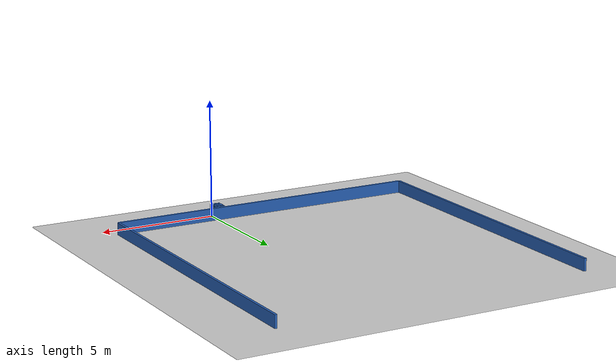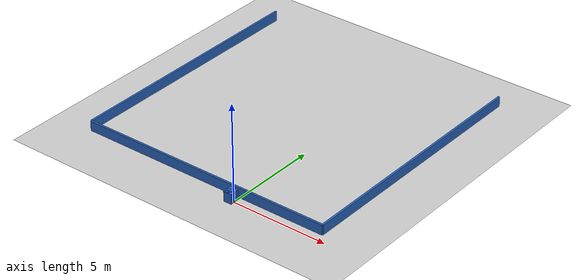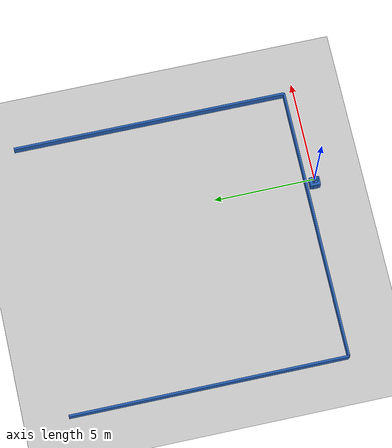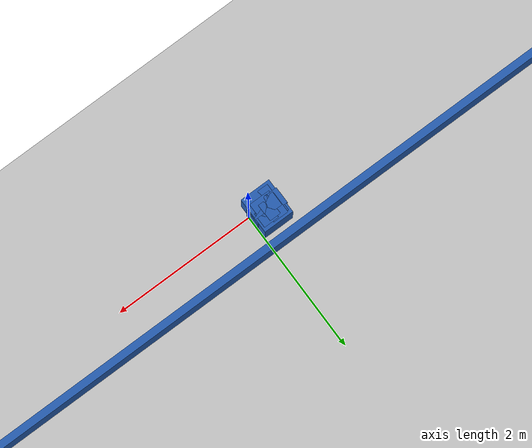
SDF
<?xml version="1.0" ?>
    <sdf version="1.5">
      <world name="default">
        <!-- A global light source -->
        <include>
          <uri>model://sun</uri>
        </include>
        <!-- A ground plane -->
        <include>
          <uri>model://ground_plane</uri>
        </include>

    <model name='libopen_space_final_T2B_57_10'>
      <static>1</static>
      <pose frame=''>-0.225000 0.075000 0.000000 0.000000 0.000000 0.000000</pose>
      <link name='link'>
        <inertial>
          <mass>1</mass>
          <inertia>
            <ixx>0.145833</ixx>
            <ixy>0</ixy>
            <ixz>0</ixz>
            <iyy>0.145833</iyy>
            <iyz>0</iyz>
            <izz>0.125</izz>
          </inertia>
        </inertial>
        <collision name='collision'>
          <geometry>
            <box>
              <size>0.32 0.20 1</size>
            </box>
          </geometry>
          <max_contacts>10</max_contacts>
          <surface>
            <contact>
              <ode/>
            </contact>
            <bounce/>
            <friction>
              <torsional>
                <ode/>
              </torsional>
              <ode/>
            </friction>
          </surface>
        </collision>
        <visual name='visual'>
          <geometry>
            <box>
              <size>0.32 0.20 1</size>
            </box>
          </geometry>
	    <material>
              <ambient>0.152000 0.379000 0.720000 1</ambient>
	      <diffuse>0.152000 0.379000 0.720000 1</diffuse>
          </material>
          <material>
            <script>
              <name>Gazebo/Grey</name>
              <uri>file://media/materials/scripts/gazebo.material</uri>
            </script>
          </material>
        </visual>
        <self_collide>0</self_collide>
        <kinematic>0</kinematic>
        <gravity>1</gravity>
      </link>
      <plugin name='libopen_space_final_T2B_57_10' filename='libopen_space_final_T2B_57_10.so'/>
    </model>

    <model name='libopen_space_final_T2B_125_48'>
      <static>1</static>
      <pose frame=''>-0.225000 0.075000 0.000000 0.000000 0.000000 0.000000</pose>
      <link name='link'>
        <inertial>
          <mass>1</mass>
          <inertia>
            <ixx>0.145833</ixx>
            <ixy>0</ixy>
            <ixz>0</ixz>
            <iyy>0.145833</iyy>
            <iyz>0</iyz>
            <izz>0.125</izz>
          </inertia>
        </inertial>
        <collision name='collision'>
          <geometry>
            <box>
              <size>0.46 0.23 1</size>
            </box>
          </geometry>
          <max_contacts>10</max_contacts>
          <surface>
            <contact>
              <ode/>
            </contact>
            <bounce/>
            <friction>
              <torsional>
                <ode/>
              </torsional>
              <ode/>
            </friction>
          </surface>
        </collision>
        <visual name='visual'>
          <geometry>
            <box>
              <size>0.46 0.23 1</size>
            </box>
          </geometry>
	    <material>
              <ambient>0.152000 0.379000 0.720000 1</ambient>
	      <diffuse>0.152000 0.379000 0.720000 1</diffuse>
          </material>
          <material>
            <script>
              <name>Gazebo/Grey</name>
              <uri>file://media/materials/scripts/gazebo.material</uri>
            </script>
          </material>
        </visual>
        <self_collide>0</self_collide>
        <kinematic>0</kinematic>
        <gravity>1</gravity>
      </link>
      <plugin name='libopen_space_final_T2B_125_48' filename='libopen_space_final_T2B_125_48.so'/>
    </model>

    <model name='libopen_space_final_T2B_125_67'>
      <static>1</static>
      <pose frame=''>-0.225000 0.075000 0.000000 0.000000 0.000000 0.000000</pose>
      <link name='link'>
        <inertial>
          <mass>1</mass>
          <inertia>
            <ixx>0.145833</ixx>
            <ixy>0</ixy>
            <ixz>0</ixz>
            <iyy>0.145833</iyy>
            <iyz>0</iyz>
            <izz>0.125</izz>
          </inertia>
        </inertial>
        <collision name='collision'>
          <geometry>
            <box>
              <size>0.17 0.24 1</size>
            </box>
          </geometry>
          <max_contacts>10</max_contacts>
          <surface>
            <contact>
              <ode/>
            </contact>
            <bounce/>
            <friction>
              <torsional>
                <ode/>
              </torsional>
              <ode/>
            </friction>
          </surface>
        </collision>
        <visual name='visual'>
          <geometry>
            <box>
              <size>0.17 0.24 1</size>
            </box>
          </geometry>
	    <material>
              <ambient>0.152000 0.379000 0.720000 1</ambient>
	      <diffuse>0.152000 0.379000 0.720000 1</diffuse>
          </material>
          <material>
            <script>
              <name>Gazebo/Grey</name>
              <uri>file://media/materials/scripts/gazebo.material</uri>
            </script>
          </material>
        </visual>
        <self_collide>0</self_collide>
        <kinematic>0</kinematic>
        <gravity>1</gravity>
      </link>
      <plugin name='libopen_space_final_T2B_125_67' filename='libopen_space_final_T2B_125_67.so'/>
    </model>

    <model name='libopen_space_final_T2B_127_53'>
      <static>1</static>
      <pose frame=''>-0.225000 0.075000 0.000000 0.000000 0.000000 0.000000</pose>
      <link name='link'>
        <inertial>
          <mass>1</mass>
          <inertia>
            <ixx>0.145833</ixx>
            <ixy>0</ixy>
            <ixz>0</ixz>
            <iyy>0.145833</iyy>
            <iyz>0</iyz>
            <izz>0.125</izz>
          </inertia>
        </inertial>
        <collision name='collision'>
          <geometry>
            <box>
              <size>0.16 0.35 1</size>
            </box>
          </geometry>
          <max_contacts>10</max_contacts>
          <surface>
            <contact>
              <ode/>
            </contact>
            <bounce/>
            <friction>
              <torsional>
                <ode/>
              </torsional>
              <ode/>
            </friction>
          </surface>
        </collision>
        <visual name='visual'>
          <geometry>
            <box>
              <size>0.16 0.35 1</size>
            </box>
          </geometry>
	    <material>
              <ambient>0.152000 0.379000 0.720000 1</ambient>
	      <diffuse>0.152000 0.379000 0.720000 1</diffuse>
          </material>
          <material>
            <script>
              <name>Gazebo/Grey</name>
              <uri>file://media/materials/scripts/gazebo.material</uri>
            </script>
          </material>
        </visual>
        <self_collide>0</self_collide>
        <kinematic>0</kinematic>
        <gravity>1</gravity>
      </link>
      <plugin name='libopen_space_final_T2B_127_53' filename='libopen_space_final_T2B_127_53.so'/>
    </model>

    <model name='libopen_space_final_T2B_105_94'>
      <static>1</static>
      <pose frame=''>-0.225000 0.075000 0.000000 0.000000 0.000000 0.000000</pose>
      <link name='link'>
        <inertial>
          <mass>1</mass>
          <inertia>
            <ixx>0.145833</ixx>
            <ixy>0</ixy>
            <ixz>0</ixz>
            <iyy>0.145833</iyy>
            <iyz>0</iyz>
            <izz>0.125</izz>
          </inertia>
        </inertial>
        <collision name='collision'>
          <geometry>
            <box>
              <size>0.18 0.22 1</size>
            </box>
          </geometry>
          <max_contacts>10</max_contacts>
          <surface>
            <contact>
              <ode/>
            </contact>
            <bounce/>
            <friction>
              <torsional>
                <ode/>
              </torsional>
              <ode/>
            </friction>
          </surface>
        </collision>
        <visual name='visual'>
          <geometry>
            <box>
              <size>0.18 0.22 1</size>
            </box>
          </geometry>
	    <material>
              <ambient>0.152000 0.379000 0.720000 1</ambient>
	      <diffuse>0.152000 0.379000 0.720000 1</diffuse>
          </material>
          <material>
            <script>
              <name>Gazebo/Grey</name>
              <uri>file://media/materials/scripts/gazebo.material</uri>
            </script>
          </material>
        </visual>
        <self_collide>0</self_collide>
        <kinematic>0</kinematic>
        <gravity>1</gravity>
      </link>
      <plugin name='libopen_space_final_T2B_105_94' filename='libopen_space_final_T2B_105_94.so'/>
    </model>

    <model name='libopen_space_final_T2B_119_97'>
      <static>1</static>
      <pose frame=''>-0.225000 0.075000 0.000000 0.000000 0.000000 0.000000</pose>
      <link name='link'>
        <inertial>
          <mass>1</mass>
          <inertia>
            <ixx>0.145833</ixx>
            <ixy>0</ixy>
            <ixz>0</ixz>
            <iyy>0.145833</iyy>
            <iyz>0</iyz>
            <izz>0.125</izz>
          </inertia>
        </inertial>
        <collision name='collision'>
          <geometry>
            <box>
              <size>0.21 0.25 1</size>
            </box>
          </geometry>
          <max_contacts>10</max_contacts>
          <surface>
            <contact>
              <ode/>
            </contact>
            <bounce/>
            <friction>
              <torsional>
                <ode/>
              </torsional>
              <ode/>
            </friction>
          </surface>
        </collision>
        <visual name='visual'>
          <geometry>
            <box>
              <size>0.21 0.25 1</size>
            </box>
          </geometry>
	    <material>
              <ambient>0.152000 0.379000 0.720000 1</ambient>
	      <diffuse>0.152000 0.379000 0.720000 1</diffuse>
          </material>
          <material>
            <script>
              <name>Gazebo/Grey</name>
              <uri>file://media/materials/scripts/gazebo.material</uri>
            </script>
          </material>
        </visual>
        <self_collide>0</self_collide>
        <kinematic>0</kinematic>
        <gravity>1</gravity>
      </link>
      <plugin name='libopen_space_final_T2B_119_97' filename='libopen_space_final_T2B_119_97.so'/>
    </model>

    <model name='libopen_space_final_T2B_111_18'>
      <static>1</static>
      <pose frame=''>-0.225000 0.075000 0.000000 0.000000 0.000000 0.000000</pose>
      <link name='link'>
        <inertial>
          <mass>1</mass>
          <inertia>
            <ixx>0.145833</ixx>
            <ixy>0</ixy>
            <ixz>0</ixz>
            <iyy>0.145833</iyy>
            <iyz>0</iyz>
            <izz>0.125</izz>
          </inertia>
        </inertial>
        <collision name='collision'>
          <geometry>
            <box>
              <size>0.43 0.50 1</size>
            </box>
          </geometry>
          <max_contacts>10</max_contacts>
          <surface>
            <contact>
              <ode/>
            </contact>
            <bounce/>
            <friction>
              <torsional>
                <ode/>
              </torsional>
              <ode/>
            </friction>
          </surface>
        </collision>
        <visual name='visual'>
          <geometry>
            <box>
              <size>0.43 0.50 1</size>
            </box>
          </geometry>
	    <material>
              <ambient>0.152000 0.379000 0.720000 1</ambient>
	      <diffuse>0.152000 0.379000 0.720000 1</diffuse>
          </material>
          <material>
            <script>
              <name>Gazebo/Grey</name>
              <uri>file://media/materials/scripts/gazebo.material</uri>
            </script>
          </material>
        </visual>
        <self_collide>0</self_collide>
        <kinematic>0</kinematic>
        <gravity>1</gravity>
      </link>
      <plugin name='libopen_space_final_T2B_111_18' filename='libopen_space_final_T2B_111_18.so'/>
    </model>

    <model name='libopen_space_final_T2B_99_64'>
      <static>1</static>
      <pose frame=''>-0.225000 0.075000 0.000000 0.000000 0.000000 0.000000</pose>
      <link name='link'>
        <inertial>
          <mass>1</mass>
          <inertia>
            <ixx>0.145833</ixx>
            <ixy>0</ixy>
            <ixz>0</ixz>
            <iyy>0.145833</iyy>
            <iyz>0</iyz>
            <izz>0.125</izz>
          </inertia>
        </inertial>
        <collision name='collision'>
          <geometry>
            <box>
              <size>0.17 0.14 1</size>
            </box>
          </geometry>
          <max_contacts>10</max_contacts>
          <surface>
            <contact>
              <ode/>
            </contact>
            <bounce/>
            <friction>
              <torsional>
                <ode/>
              </torsional>
              <ode/>
            </friction>
          </surface>
        </collision>
        <visual name='visual'>
          <geometry>
            <box>
              <size>0.17 0.14 1</size>
            </box>
          </geometry>
	    <material>
              <ambient>0.152000 0.379000 0.720000 1</ambient>
	      <diffuse>0.152000 0.379000 0.720000 1</diffuse>
          </material>
          <material>
            <script>
              <name>Gazebo/Grey</name>
              <uri>file://media/materials/scripts/gazebo.material</uri>
            </script>
          </material>
        </visual>
        <self_collide>0</self_collide>
        <kinematic>0</kinematic>
        <gravity>1</gravity>
      </link>
      <plugin name='libopen_space_final_T2B_99_64' filename='libopen_space_final_T2B_99_64.so'/>
    </model>

    <model name='libopen_space_final_T2B_145_37'>
      <static>1</static>
      <pose frame=''>-0.225000 0.075000 0.000000 0.000000 0.000000 0.000000</pose>
      <link name='link'>
        <inertial>
          <mass>1</mass>
          <inertia>
            <ixx>0.145833</ixx>
            <ixy>0</ixy>
            <ixz>0</ixz>
            <iyy>0.145833</iyy>
            <iyz>0</iyz>
            <izz>0.125</izz>
          </inertia>
        </inertial>
        <collision name='collision'>
          <geometry>
            <box>
              <size>0.33 0.43 1</size>
            </box>
          </geometry>
          <max_contacts>10</max_contacts>
          <surface>
            <contact>
              <ode/>
            </contact>
            <bounce/>
            <friction>
              <torsional>
                <ode/>
              </torsional>
              <ode/>
            </friction>
          </surface>
        </collision>
        <visual name='visual'>
          <geometry>
            <box>
              <size>0.33 0.43 1</size>
            </box>
          </geometry>
	    <material>
              <ambient>0.152000 0.379000 0.720000 1</ambient>
	      <diffuse>0.152000 0.379000 0.720000 1</diffuse>
          </material>
          <material>
            <script>
              <name>Gazebo/Grey</name>
              <uri>file://media/materials/scripts/gazebo.material</uri>
            </script>
          </material>
        </visual>
        <self_collide>0</self_collide>
        <kinematic>0</kinematic>
        <gravity>1</gravity>
      </link>
      <plugin name='libopen_space_final_T2B_145_37' filename='libopen_space_final_T2B_145_37.so'/>
    </model>

    <model name='libopen_space_final_T2B_91_29'>
      <static>1</static>
      <pose frame=''>-0.225000 0.075000 0.000000 0.000000 0.000000 0.000000</pose>
      <link name='link'>
        <inertial>
          <mass>1</mass>
          <inertia>
            <ixx>0.145833</ixx>
            <ixy>0</ixy>
            <ixz>0</ixz>
            <iyy>0.145833</iyy>
            <iyz>0</iyz>
            <izz>0.125</izz>
          </inertia>
        </inertial>
        <collision name='collision'>
          <geometry>
            <box>
              <size>0.44 0.11 1</size>
            </box>
          </geometry>
          <max_contacts>10</max_contacts>
          <surface>
            <contact>
              <ode/>
            </contact>
            <bounce/>
            <friction>
              <torsional>
                <ode/>
              </torsional>
              <ode/>
            </friction>
          </surface>
        </collision>
        <visual name='visual'>
          <geometry>
            <box>
              <size>0.44 0.11 1</size>
            </box>
          </geometry>
	    <material>
              <ambient>0.152000 0.379000 0.720000 1</ambient>
	      <diffuse>0.152000 0.379000 0.720000 1</diffuse>
          </material>
          <material>
            <script>
              <name>Gazebo/Grey</name>
              <uri>file://media/materials/scripts/gazebo.material</uri>
            </script>
          </material>
        </visual>
        <self_collide>0</self_collide>
        <kinematic>0</kinematic>
        <gravity>1</gravity>
      </link>
      <plugin name='libopen_space_final_T2B_91_29' filename='libopen_space_final_T2B_91_29.so'/>
    </model>

    <model name='libopen_space_final_T2B_87_56'>
      <static>1</static>
      <pose frame=''>-0.225000 0.075000 0.000000 0.000000 0.000000 0.000000</pose>
      <link name='link'>
        <inertial>
          <mass>1</mass>
          <inertia>
            <ixx>0.145833</ixx>
            <ixy>0</ixy>
            <ixz>0</ixz>
            <iyy>0.145833</iyy>
            <iyz>0</iyz>
            <izz>0.125</izz>
          </inertia>
        </inertial>
        <collision name='collision'>
          <geometry>
            <box>
              <size>0.33 0.28 1</size>
            </box>
          </geometry>
          <max_contacts>10</max_contacts>
          <surface>
            <contact>
              <ode/>
            </contact>
            <bounce/>
            <friction>
              <torsional>
                <ode/>
              </torsional>
              <ode/>
            </friction>
          </surface>
        </collision>
        <visual name='visual'>
          <geometry>
            <box>
              <size>0.33 0.28 1</size>
            </box>
          </geometry>
	    <material>
              <ambient>0.152000 0.379000 0.720000 1</ambient>
	      <diffuse>0.152000 0.379000 0.720000 1</diffuse>
          </material>
          <material>
            <script>
              <name>Gazebo/Grey</name>
              <uri>file://media/materials/scripts/gazebo.material</uri>
            </script>
          </material>
        </visual>
        <self_collide>0</self_collide>
        <kinematic>0</kinematic>
        <gravity>1</gravity>
      </link>
      <plugin name='libopen_space_final_T2B_87_56' filename='libopen_space_final_T2B_87_56.so'/>
    </model>

    <model name='libopen_space_final_T2B_52_73'>
      <static>1</static>
      <pose frame=''>-0.225000 0.075000 0.000000 0.000000 0.000000 0.000000</pose>
      <link name='link'>
        <inertial>
          <mass>1</mass>
          <inertia>
            <ixx>0.145833</ixx>
            <ixy>0</ixy>
            <ixz>0</ixz>
            <iyy>0.145833</iyy>
            <iyz>0</iyz>
            <izz>0.125</izz>
          </inertia>
        </inertial>
        <collision name='collision'>
          <geometry>
            <box>
              <size>0.37 0.40 1</size>
            </box>
          </geometry>
          <max_contacts>10</max_contacts>
          <surface>
            <contact>
              <ode/>
            </contact>
            <bounce/>
            <friction>
              <torsional>
                <ode/>
              </torsional>
              <ode/>
            </friction>
          </surface>
        </collision>
        <visual name='visual'>
          <geometry>
            <box>
              <size>0.37 0.40 1</size>
            </box>
          </geometry>
	    <material>
              <ambient>0.152000 0.379000 0.720000 1</ambient>
	      <diffuse>0.152000 0.379000 0.720000 1</diffuse>
          </material>
          <material>
            <script>
              <name>Gazebo/Grey</name>
              <uri>file://media/materials/scripts/gazebo.material</uri>
            </script>
          </material>
        </visual>
        <self_collide>0</self_collide>
        <kinematic>0</kinematic>
        <gravity>1</gravity>
      </link>
      <plugin name='libopen_space_final_T2B_52_73' filename='libopen_space_final_T2B_52_73.so'/>
    </model>

        <model name='bottom_wall'>
          <static>1</static>
          <pose frame=''>-2.25 0.5 0.000000 0.000000 0.000000 1.57079632</pose>
          <link name='link'>
            <inertial>
            <mass>1</mass>
            <inertia>
              <ixx>0.145833</ixx>
              <ixy>0</ixy>
              <ixz>0</ixz>
              <iyy>0.145833</iyy>
              <iyz>0</iyz>
              <izz>0.125</izz>
            </inertia>
            </inertial>
            <collision name='collision'>
            <geometry>
              <box>
              <size>0.1 13.5 1</size>
              </box>
            </geometry>
            <max_contacts>10</max_contacts>
            <surface>
              <contact>
              <ode/>
              </contact>
              <bounce/>
              <friction>
              <torsional>
                <ode/>
              </torsional>
              <ode/>
              </friction>
            </surface>
            </collision>
            <visual name='visual'>
            <geometry>
              <box>
              <size>0.1 13.5 1</size>
              </box>
            </geometry>
            <material>
              <ambient>0.152000 0.379000 0.720000 1</ambient>
            <diffuse>0.152000 0.379000 0.720000 1</diffuse>
            </material>
            <material>
              <script>
              <name>Gazebo/Grey</name>
              <uri>file://media/materials/scripts/gazebo.material</uri>
              </script>
            </material>
            </visual>
            <self_collide>0</self_collide>
            <kinematic>0</kinematic>
            <gravity>1</gravity>
          </link>
        </model>

        <model name='left_wall'>
          <static>1</static>
          <pose frame=''>-9 7.25 0.000000 0.000000 0.000000 0.000000</pose>
          <link name='link'>
            <inertial>
            <mass>1</mass>
            <inertia>
              <ixx>0.145833</ixx>
              <ixy>0</ixy>
              <ixz>0</ixz>
              <iyy>0.145833</iyy>
              <iyz>0</iyz>
              <izz>0.125</izz>
            </inertia>
            </inertial>
            <collision name='collision'>
            <geometry>
              <box>
              <size>0.1 13.5 1</size>
              </box>
            </geometry>
            <max_contacts>10</max_contacts>
            <surface>
              <contact>
              <ode/>
              </contact>
              <bounce/>
              <friction>
              <torsional>
                <ode/>
              </torsional>
              <ode/>
              </friction>
            </surface>
            </collision>
            <visual name='visual'>
            <geometry>
              <box>
              <size>0.1 13.5 1</size>
              </box>
            </geometry>
            <material>
              <ambient>0.152000 0.379000 0.720000 1</ambient>
            <diffuse>0.152000 0.379000 0.720000 1</diffuse>
            </material>
            <material>
              <script>
              <name>Gazebo/Grey</name>
              <uri>file://media/materials/scripts/gazebo.material</uri>
              </script>
            </material>
            </visual>
            <self_collide>0</self_collide>
            <kinematic>0</kinematic>
            <gravity>1</gravity>
          </link>
        </model>

        <model name='right_wall'>
          <static>1</static>
          <pose frame=''>4.5 7.25 0.000000 0.000000 0.000000 0.000000</pose>
          <link name='link'>
            <inertial>
            <mass>1</mass>
            <inertia>
              <ixx>0.145833</ixx>
              <ixy>0</ixy>
              <ixz>0</ixz>
              <iyy>0.145833</iyy>
              <iyz>0</iyz>
              <izz>0.125</izz>
            </inertia>
            </inertial>
            <collision name='collision'>
            <geometry>
              <box>
              <size>0.1 13.5 1</size>
              </box>
            </geometry>
            <max_contacts>10</max_contacts>
            <surface>
              <contact>
              <ode/>
              </contact>
              <bounce/>
              <friction>
              <torsional>
                <ode/>
              </torsional>
              <ode/>
              </friction>
            </surface>
            </collision>
            <visual name='visual'>
            <geometry>
              <box>
              <size>0.1 13.5 1</size>
              </box>
            </geometry>
            <material>
              <ambient>0.152000 0.379000 0.720000 1</ambient>
            <diffuse>0.152000 0.379000 0.720000 1</diffuse>
            </material>
            <material>
              <script>
              <name>Gazebo/Grey</name>
              <uri>file://media/materials/scripts/gazebo.material</uri>
              </script>
            </material>
            </visual>
            <self_collide>0</self_collide>
            <kinematic>0</kinematic>
            <gravity>1</gravity>
          </link>
        </model>

      </world>
    </sdf>"
